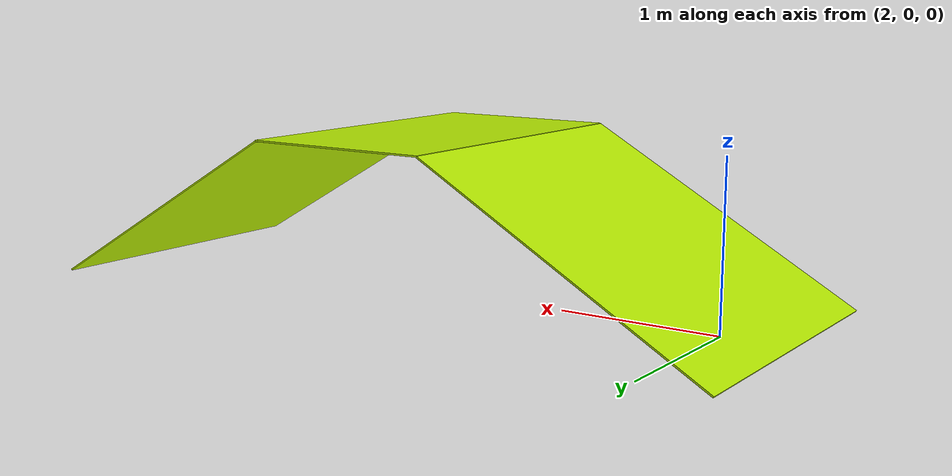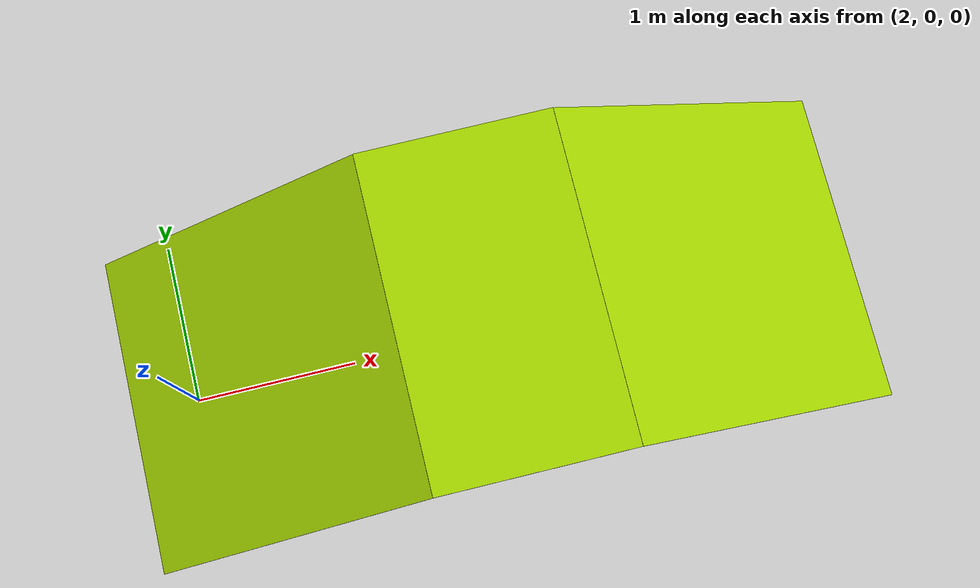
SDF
<?xml version="1.0"?>
<sdf version="1.4">

<material name="blue">
    <color rgba="0.0 0.0 0.8 1.0"/>
  </material>

  <model name="slope">
    <static>true</static>
    <pose>0.5 0 0 0 0 0</pose>

    <link name="slope_up">
    <pose>1.95533648913 0 0.5 0 -0.52 0</pose>
      <collision name="collision">
        <geometry>
          <box>
            <size>2.0 2 0.01</size>
          </box>
        </geometry>
      </collision>
      <visual name="visual">
        <geometry>
          <box>
            <size>2.0 2 0.01</size>
          </box>
        </geometry>
        <material>
            <ambient>0 0 0.8 1</ambient>
            <diffuse>0.7 0.9 0 1</diffuse>
            <specular>0.2 0.2 0.2 64</specular>
            <emissive>0.1 0 0.1 1</emissive>
          </material>
      </visual>
    </link>

    <link name='slope_zero'>
      <pose>3.41067297825 0 1 0 0 0</pose>
      <collision name="collision">
        <geometry>
          <box>
            <size>1.1786 2 0.01</size>
          </box>
        </geometry>
      </collision>
      <visual name="visual">
        <geometry>
          <box>
            <size>1.1786 2 0.01</size>
          </box>
        </geometry>
        <material>
            <ambient>0 0 0.8 1</ambient>
            <diffuse>0.7 0.9 0 1</diffuse>
            <specular>0.2 0.2 0.2 64</specular>
            <emissive>0.1 0 0.1 1</emissive>
          </material>
      </visual>
    </link>

    <link name="slope_down">
    <pose>4.86600946738 0 0.5 0 0.52 0</pose>
      <collision name="collision">
        <geometry>
          <box>
            <size>2.0 2 0.01</size>
          </box>
        </geometry>
      </collision>
      <visual name="visual">
        <geometry>
          <box>
            <size>2.0 2 0.01</size>
          </box>
        </geometry>
        <material>
            <ambient>0 0 0.8 1</ambient>
            <diffuse>0.7 0.9 0 1</diffuse>
            <specular>0.2 0.2 0.2 64</specular>
            <emissive>0.1 0 0.1 1</emissive>
          </material>
      </visual>
    </link>

  </model>
</sdf>
